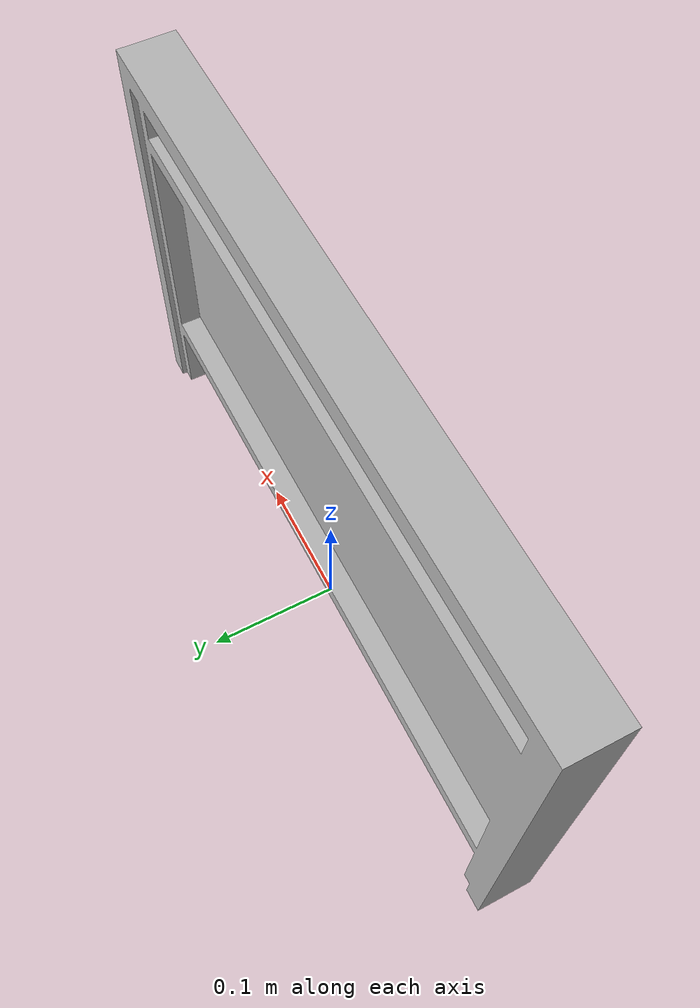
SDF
<?xml version='1.0' encoding='utf-8'?>
<sdf version="1.6">
  <model name="FoodCourtBarricade">
   <static>true</static>
    <link name="body">
      <pose>0 0 0 0 0 0</pose>

      <visual name="visual">
        <geometry>
          <mesh>
            <uri>model://FoodCourtBarricade/meshes/FoodCourtBarricade.dae</uri>
            <scale>0.3 0.5 0.3</scale>
          </mesh>
        </geometry>
      </visual>

      <collision name="collision">
        <geometry>
          <mesh>
            <uri>model://FoodCourtBarricade/meshes/FoodCourtBarricade_Col.obj</uri>
            <scale>0.3 0.5 0.3</scale>
          </mesh>
        </geometry>
      </collision>

    </link>
  </model>
</sdf>
